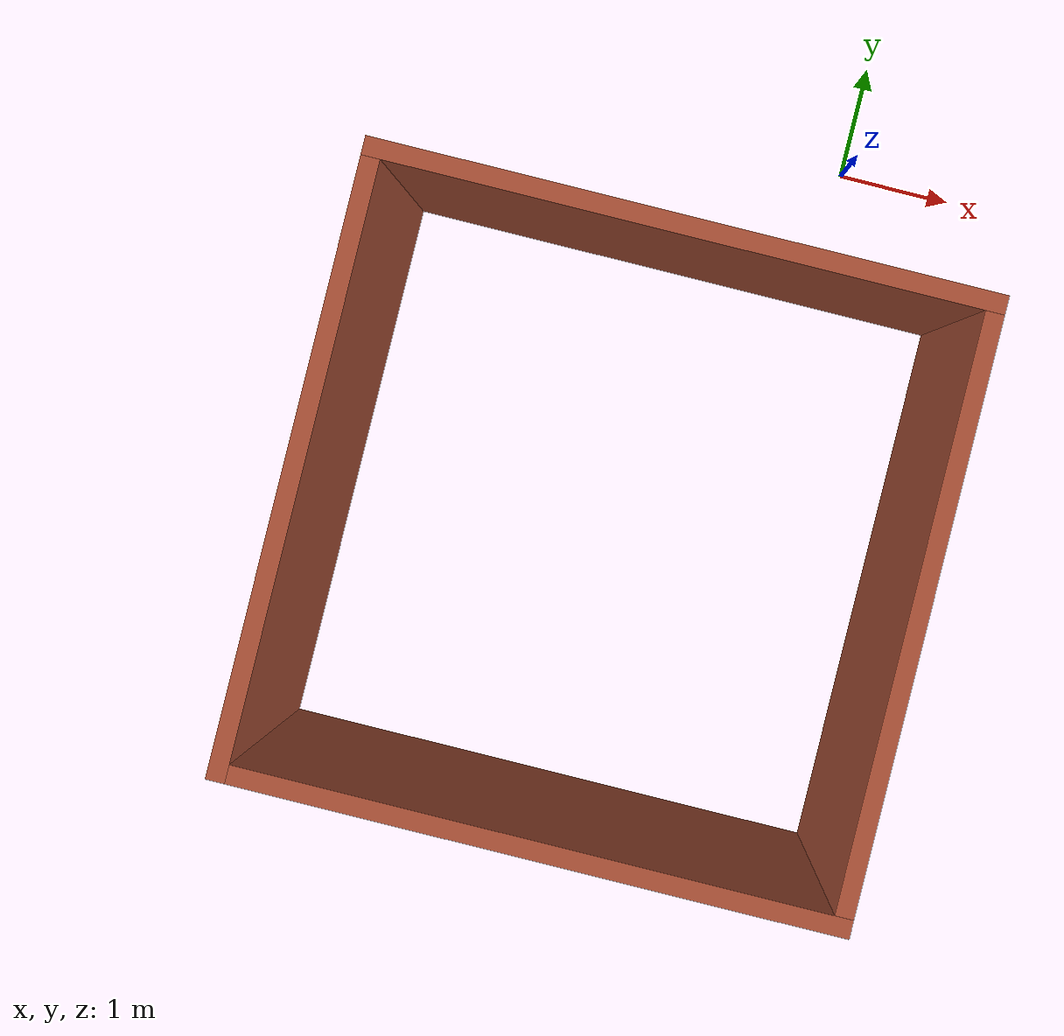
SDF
<?xml version='1.0'?>
<sdf version='1.7'>
  <model name='world'>
    <pose>-1.285 -3.0425 0 0 -0 0</pose>
    <link name='Wall_0'>
      <collision name='Wall_0_Collision'>
        <geometry>
          <box>
            <size>5 0.15 2.5</size>
          </box>
        </geometry>
        <pose>0 0 1.25 0 -0 0</pose>
      </collision>
      <visual name='Wall_0_Visual'>
        <pose>0 0 1.25 0 -0 0</pose>
        <geometry>
          <box>
            <size>5 0.15 2.5</size>
          </box>
        </geometry>
        <material>
          <script>
            <uri>file://media/materials/scripts/gazebo.material</uri>
            <name>Gazebo/Bricks</name>
          </script>
          <ambient>1 1 1 1</ambient>
        </material>
        <meta>
          <layer>0</layer>
        </meta>
      </visual>
      <pose>0 1.8825 0 0 -0 3.14159</pose>
    </link>
    <link name='Wall_1'>
      <collision name='Wall_1_Collision'>
        <geometry>
          <box>
            <size>5 0.15 2.5</size>
          </box>
        </geometry>
        <pose>0 0 1.25 0 -0 0</pose>
      </collision>
      <visual name='Wall_1_Visual'>
        <pose>0 0 1.25 0 -0 0</pose>
        <geometry>
          <box>
            <size>5 0.15 2.5</size>
          </box>
        </geometry>
        <material>
          <script>
            <uri>file://media/materials/scripts/gazebo.material</uri>
            <name>Gazebo/Bricks</name>
          </script>
          <ambient>1 1 1 1</ambient>
        </material>
        <meta>
          <layer>0</layer>
        </meta>
      </visual>
      <pose>-2.425 -0.5425 0 0 -0 -1.5708</pose>
    </link>
    <link name='Wall_2'>
      <collision name='Wall_2_Collision'>
        <geometry>
          <box>
            <size>5 0.15 2.5</size>
          </box>
        </geometry>
        <pose>0 0 1.25 0 -0 0</pose>
      </collision>
      <visual name='Wall_2_Visual'>
        <pose>0 0 1.25 0 -0 0</pose>
        <geometry>
          <box>
            <size>5 0.15 2.5</size>
          </box>
        </geometry>
        <material>
          <script>
            <uri>file://media/materials/scripts/gazebo.material</uri>
            <name>Gazebo/Bricks</name>
          </script>
          <ambient>1 1 1 1</ambient>
        </material>
        <meta>
          <layer>0</layer>
        </meta>
      </visual>
      <pose>0 -2.9675 0 0 -0 0</pose>
    </link>
    <link name='Wall_3'>
      <collision name='Wall_3_Collision'>
        <geometry>
          <box>
            <size>5 0.15 2.5</size>
          </box>
        </geometry>
        <pose>0 0 1.25 0 -0 0</pose>
      </collision>
      <visual name='Wall_3_Visual'>
        <pose>0 0 1.25 0 -0 0</pose>
        <geometry>
          <box>
            <size>5 0.15 2.5</size>
          </box>
        </geometry>
        <material>
          <script>
            <uri>file://media/materials/scripts/gazebo.material</uri>
            <name>Gazebo/Bricks</name>
          </script>
          <ambient>1 1 1 1</ambient>
        </material>
        <meta>
          <layer>0</layer>
        </meta>
      </visual>
      <pose>2.425 -0.5425 0 0 -0 1.5708</pose>
    </link>
    <static>1</static>
  </model>
</sdf>
